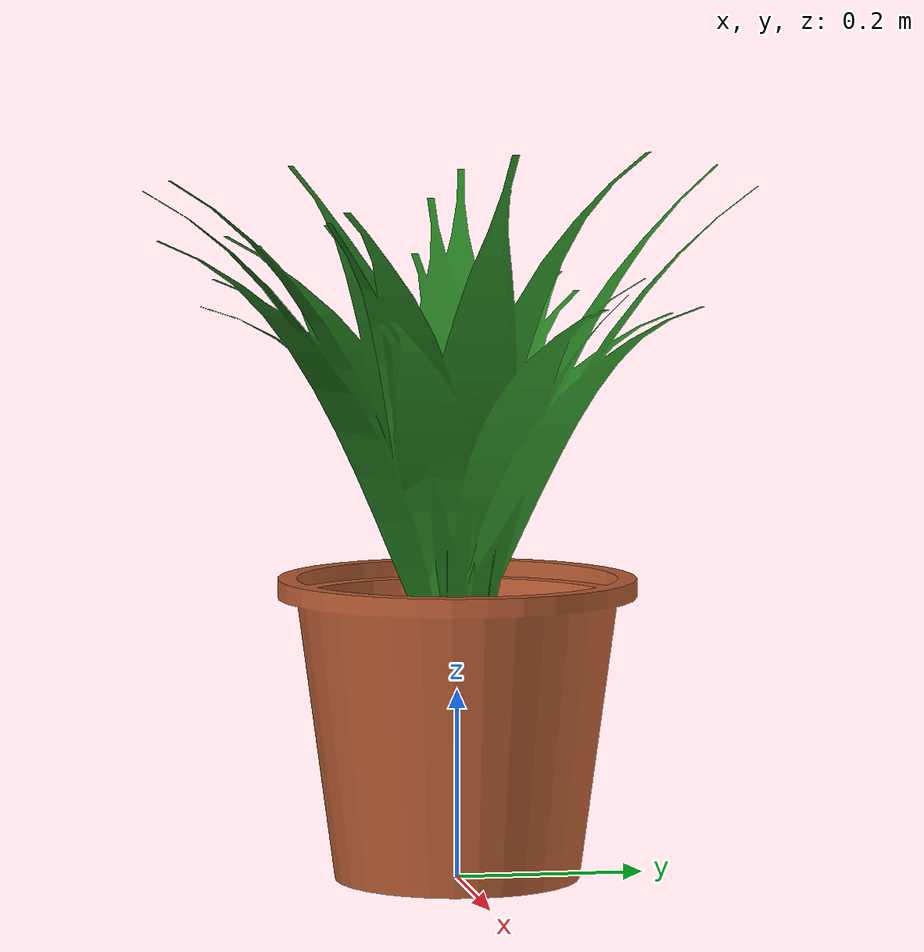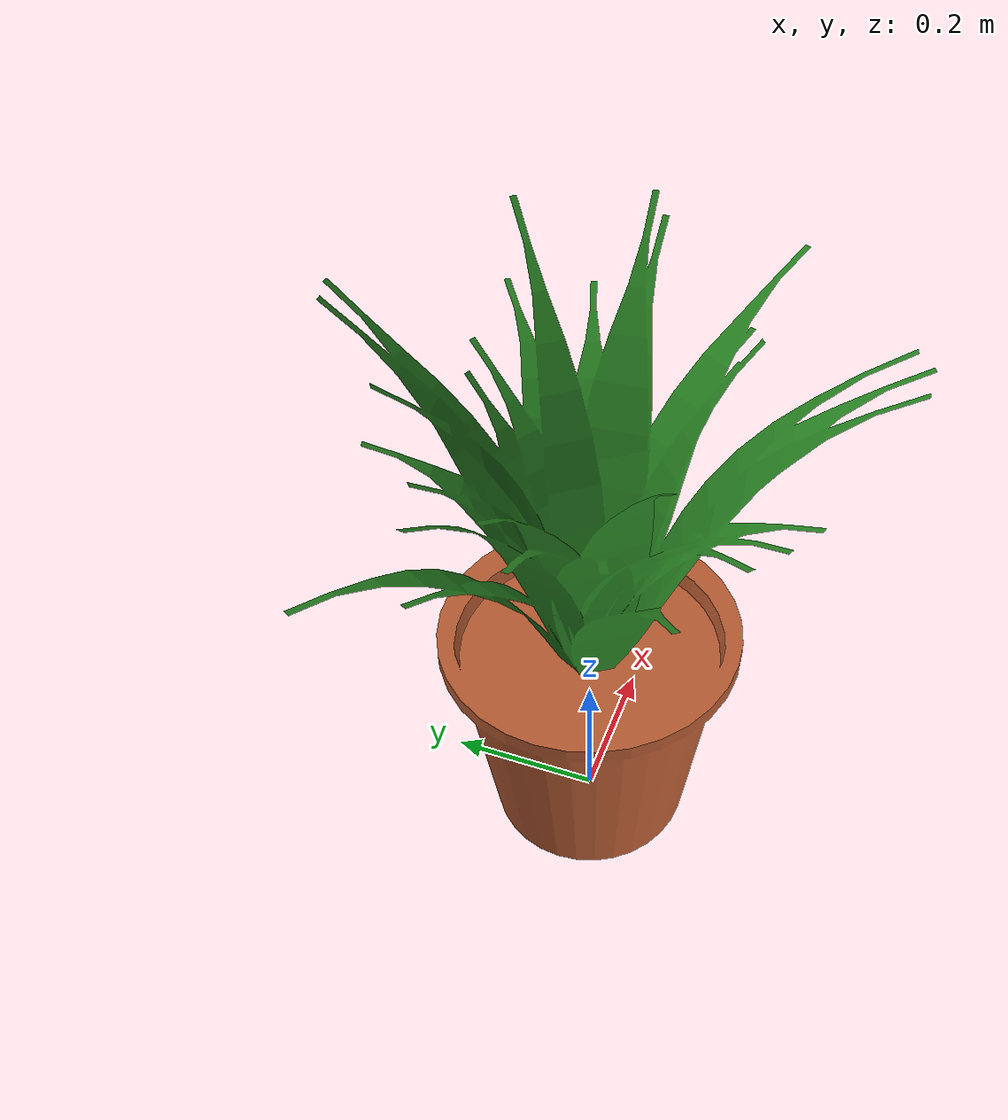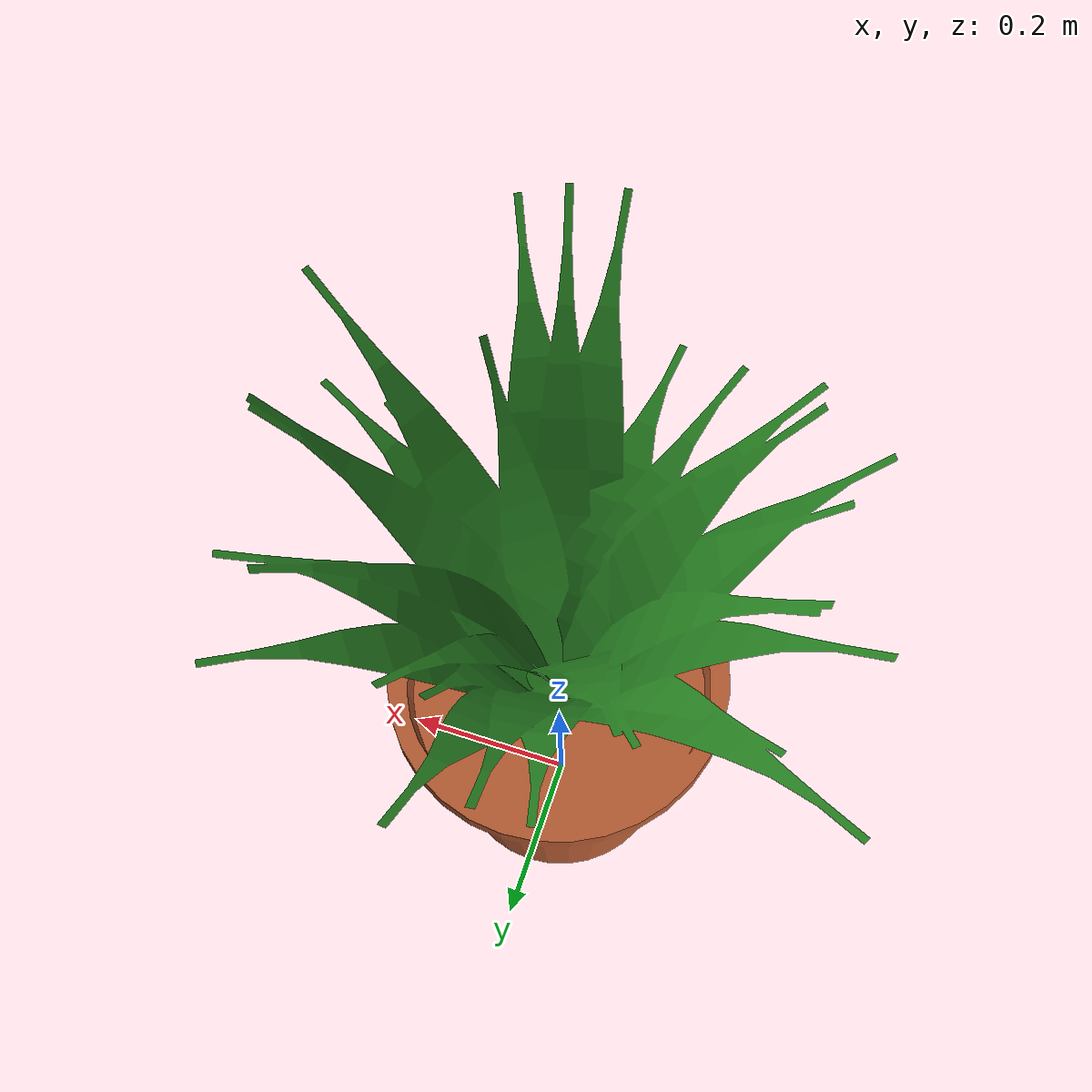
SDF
<?xml version="1.0"?>
<sdf version="1.9">
  <model name="potted_plant">
    <static>true</static>
    <link name="link">
      <collision name="collision">
        <pose>0 0 0.2 0 0 0</pose>
        <geometry><cylinder><radius>0.19</radius><length>0.4</length></cylinder></geometry>
      </collision>
      <visual name="pot">
        <geometry><mesh><uri>model://potted_plant/meshes/pot.obj</uri></mesh></geometry>
        <material>
          <ambient>0.55 0.27 0.16 1</ambient>
          <diffuse>0.72 0.36 0.2 1</diffuse>
          <specular>0.05 0.05 0.05 1</specular>
          <pbr><metal><metalness>0.0</metalness><roughness>0.85</roughness></metal></pbr>
        </material>
      </visual>
      <visual name="leaves">
        <geometry><mesh><uri>model://potted_plant/meshes/leaves.obj</uri></mesh></geometry>
        <material>
          <ambient>0.08 0.3 0.08 1</ambient>
          <diffuse>0.15 0.5 0.13 1</diffuse>
          <specular>0.1 0.15 0.1 1</specular>
          <pbr><metal><metalness>0.0</metalness><roughness>0.6</roughness></metal></pbr>
        </material>
      </visual>
    </link>
  </model>
</sdf>
